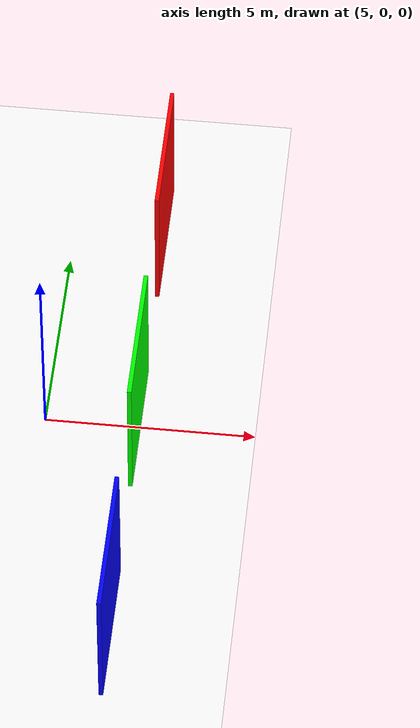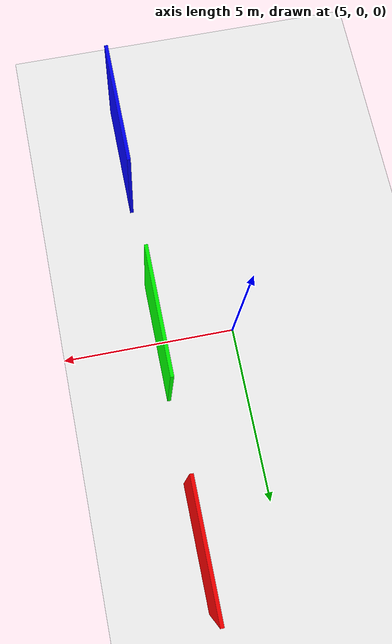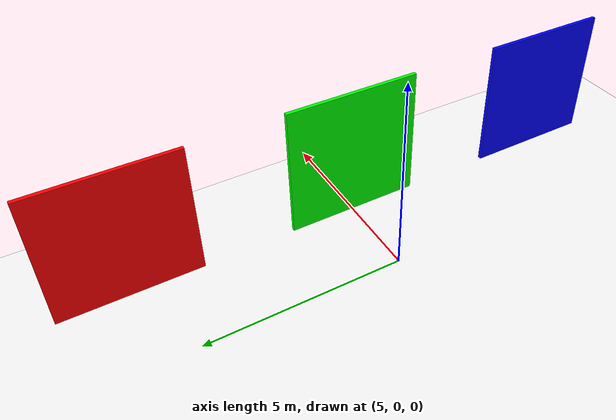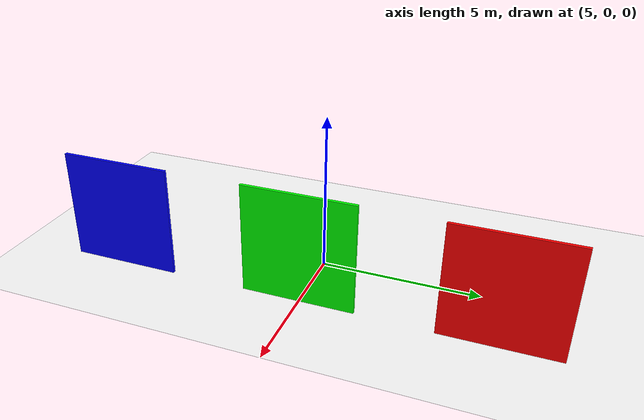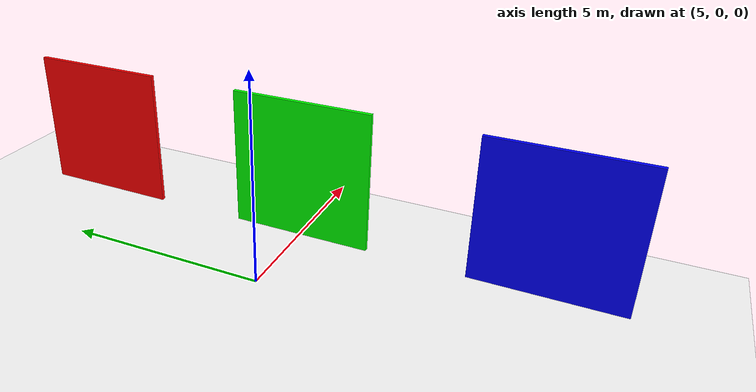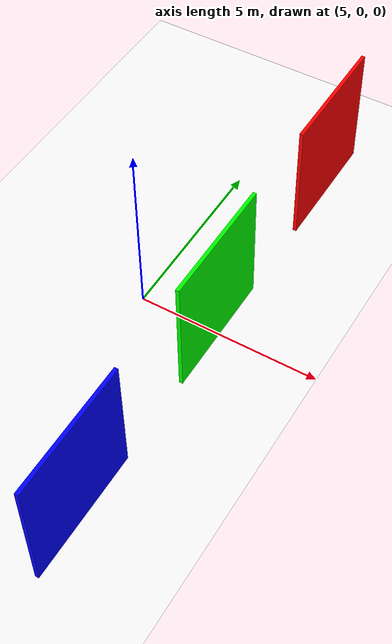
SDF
<sdf version="1.10">
 <world name="empty">
  <physics name="1ms" type="ignored">
   <max_step_size>0.001</max_step_size>
   <real_time_factor>1</real_time_factor>
   <real_time_update_rate>1000</real_time_update_rate>
  </physics>
  <plugin name="gz::sim::systems::Physics" filename="gz-sim-physics-system"/>
  <plugin name="gz::sim::systems::UserCommands" filename="gz-sim-user-commands-system"/>
  <plugin name="gz::sim::systems::SceneBroadcaster" filename="gz-sim-scene-broadcaster-system"/>
  <plugin name="gz::sim::systems::Contact" filename="gz-sim-contact-system"/>
  <gravity>0 0 -9.8000000000000007</gravity>
  <magnetic_field>5.5644999999999998e-06 2.2875799999999999e-05 -4.2388400000000002e-05</magnetic_field>
  <atmosphere type="adiabatic"/>
  <scene>
   <ambient>0.400000006 0.400000006 0.400000006 1</ambient>
   <background>0.699999988 0.699999988 0.699999988 1</background>
   <shadows>false</shadows>
  </scene>
  <model name="line_path_ground_plane">
   <static>true</static>
   <link name="link">
    <collision name="collision">
     <geometry><plane><normal>0 0 1</normal><size>20 20</size></plane></geometry>
     <surface><friction><ode><mu>100</mu><mu2>50</mu2></ode></friction></surface>
    </collision>
    <visual name="visual">
     <cast_shadows>false</cast_shadows>
     <geometry><plane><normal>0 0 1</normal><size>20 20</size></plane></geometry>
     <material>
      <ambient>1 1 1 1</ambient>
      <diffuse>1 1 1 1</diffuse>
      <specular>0 0 0 1</specular>
      <pbr>
       <metal><albedo_map>model://line_path_ground_plane/materials/textures/fork_path2.png</albedo_map></metal>
      </pbr>
     </material>
    </visual>
    <inertial>
     <mass>1</mass>
     <inertia><ixx>1</ixx><ixy>0</ixy><ixz>0</ixz><iyy>1</iyy><iyz>0</iyz><izz>1</izz></inertia>
    </inertial>
   </link>
  </model>
  <model name="box1">
   <pose>7.2306399345397949 5.8256697654724121 1.7721184492111206 0 0 0</pose>
   <link name="box1_link">
    <inertial>
     <inertia><ixx>0.16666</ixx><ixy>0</ixy><ixz>0</ixz><iyy>0.16666</iyy><iyz>0</iyz><izz>0.16666</izz></inertia>
     <mass>1</mass>
    </inertial>
    <collision name="box1_collision">
     <geometry><box><size>0.10000000000000001 3.5 3.5</size></box></geometry>
    </collision>
    <visual name="box1_visual">
     <geometry><box><size>0.10000000000000001 3.5 3.5</size></box></geometry>
     <material><ambient>1 0 0 1</ambient><diffuse>1 0 0 1</diffuse><specular>1 1 1 1</specular></material>
    </visual>
   </link>
   <static>false</static>
  </model>
  <model name="box2">
   <pose>7.2306399345397949 -0.034971900284290314 1.7962656021118164 0 0 0</pose>
   <link name="box2_link">
    <inertial>
     <inertia><ixx>0.16666</ixx><ixy>0</ixy><ixz>0</ixz><iyy>0.16666</iyy><iyz>0</iyz><izz>0.16666</izz></inertia>
     <mass>1</mass>
    </inertial>
    <collision name="box2_collision">
     <geometry><box><size>0.10000000000000001 3.5 3.5</size></box></geometry>
    </collision>
    <visual name="box2_visual">
     <geometry><box><size>0.10000000000000001 3.5 3.5</size></box></geometry>
     <material><ambient>0 1 0 1</ambient><diffuse>0 1 0 1</diffuse><specular>1 1 1 1</specular></material>
    </visual>
   </link>
   <static>false</static>
  </model>
  <model name="box3">
   <pose>7.2306399345397949 -5.9547300338745117 1.7818326950073242 0 0 0</pose>
   <link name="box3_link">
    <inertial>
     <inertia><ixx>0.16666</ixx><ixy>0</ixy><ixz>0</ixz><iyy>0.16666</iyy><iyz>0</iyz><izz>0.16666</izz></inertia>
     <mass>1</mass>
    </inertial>
    <collision name="box3_collision">
     <geometry><box><size>0.10000000000000001 3.5 3.5</size></box></geometry>
    </collision>
    <visual name="box3_visual">
     <geometry><box><size>0.10000000000000001 3.5 3.5</size></box></geometry>
     <material><ambient>0 0 1 1</ambient><diffuse>0 0 1 1</diffuse><specular>1 1 1 1</specular></material>
    </visual>
   </link>
   <static>false</static>
  </model>
  <light name="sun" type="directional">
   <pose>0 0 10 0 0 0</pose>
   <cast_shadows>false</cast_shadows>
   <intensity>1</intensity>
   <direction>-0.5 0.10000000000000001 -0.90000000000000002</direction>
   <diffuse>0.800000012 0.800000012 0.800000012 1</diffuse>
   <specular>0.200000003 0.200000003 0.200000003 1</specular>
   <attenuation>
    <range>1000</range>
    <linear>0.01</linear>
    <constant>0.90000000000000002</constant>
    <quadratic>0.001</quadratic>
   </attenuation>
   <spot><inner_angle>0</inner_angle><outer_angle>0</outer_angle><falloff>0</falloff></spot>
  </light>
 </world>
</sdf>
